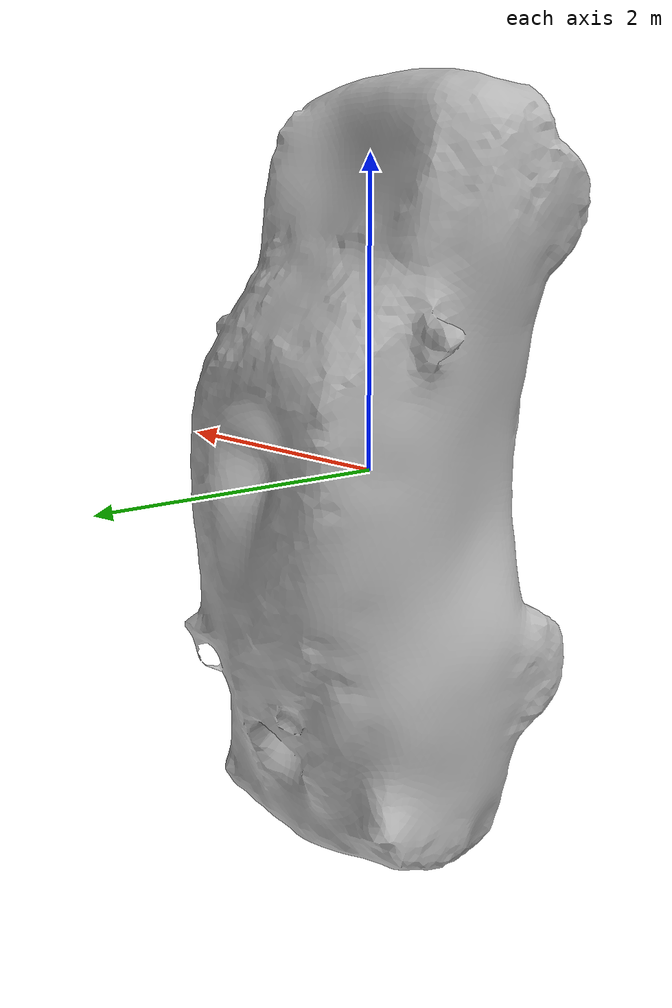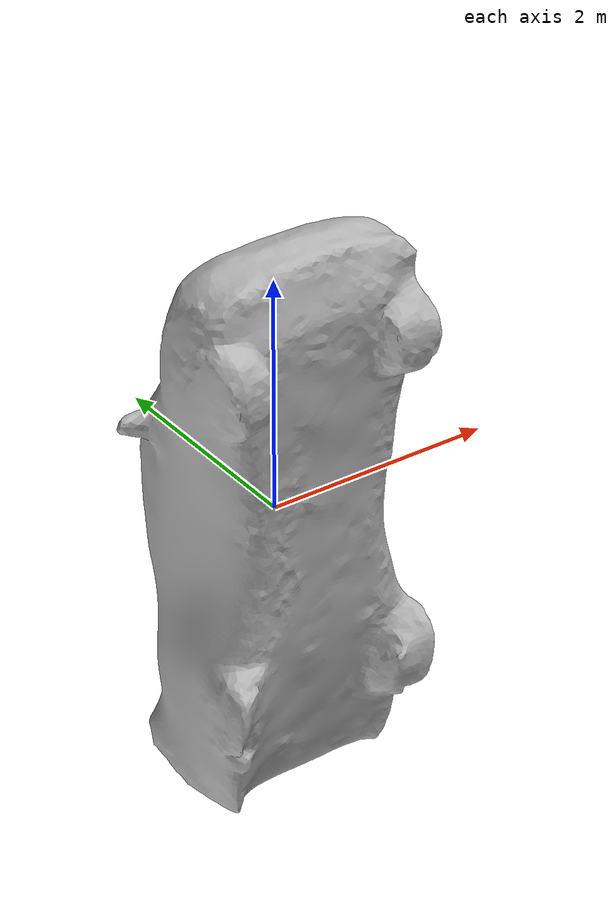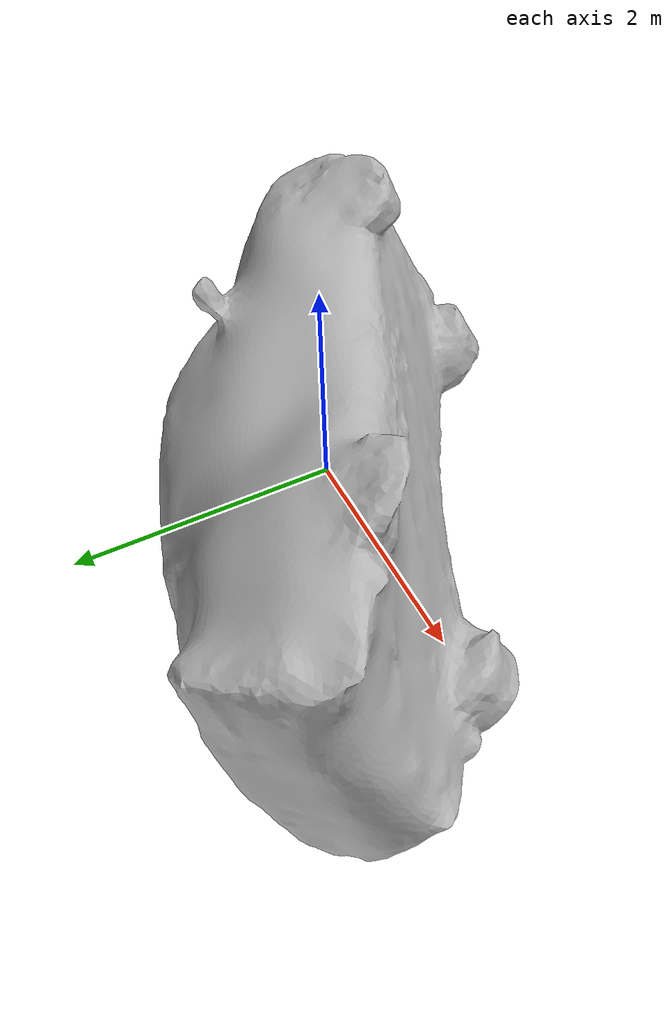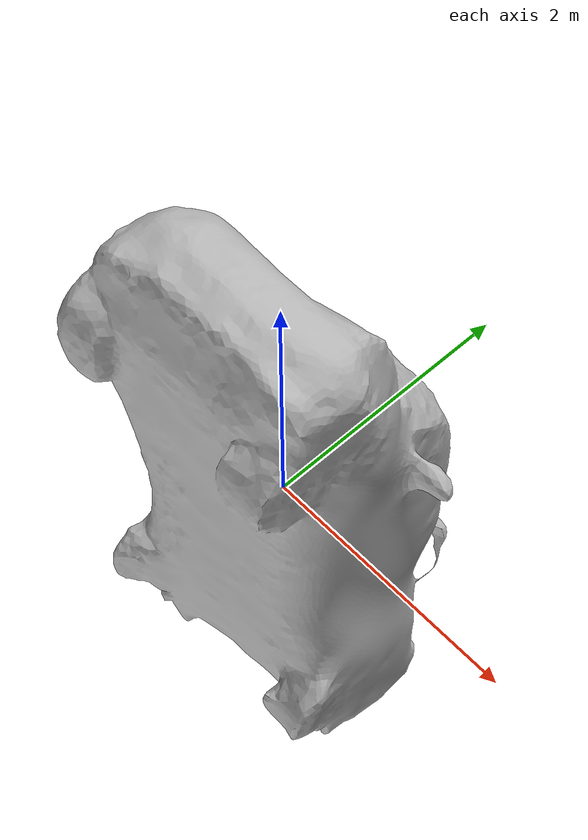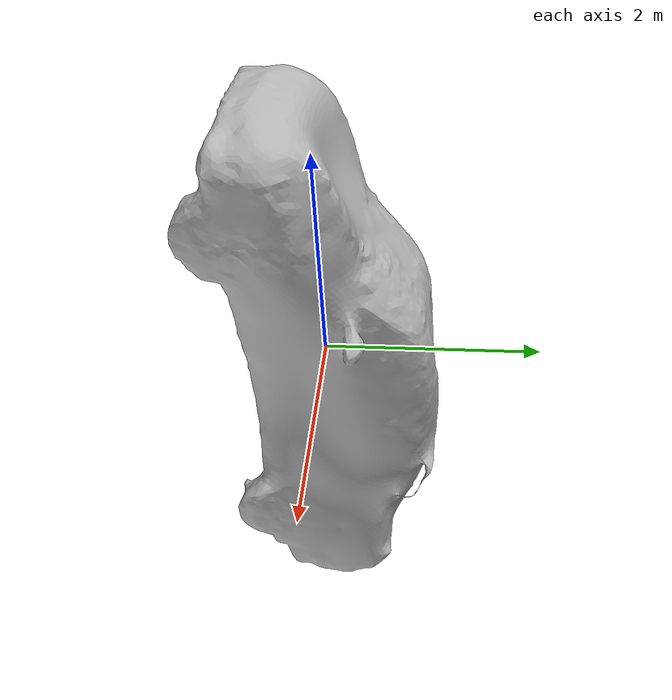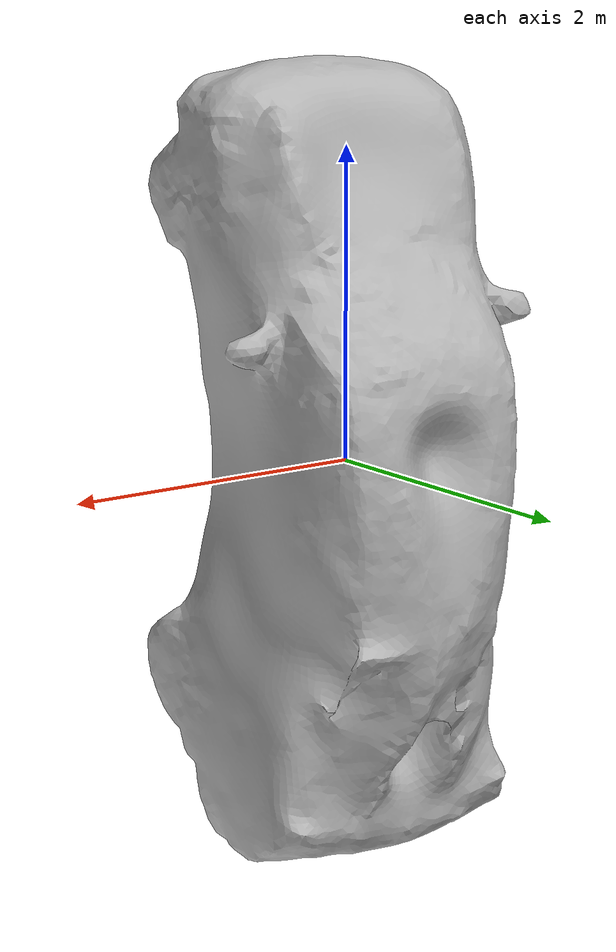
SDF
<?xml version='1.0'?>
<sdf version='1.7'>
  <model name='kare-whitecar-bot'>
    <link name='link'>
      <self_collide>0</self_collide>
      <enable_wind>0</enable_wind>
      <kinematic>0</kinematic>
      <pose>0 0 0 0 -0 0</pose>
      <gravity>1</gravity>
      <inertial>
        <mass>1</mass>
        <pose>0 0 0 0 -0 0</pose>
        <inertia>
          <ixx>1</ixx>
          <ixy>0</ixy>
          <ixz>0</ixz>
          <iyy>1</iyy>
          <iyz>0</iyz>
          <izz>1</izz>
        </inertia>
      </inertial>
      <visual name='visual'>
        <geometry>
          <mesh>
            <scale>5 5 5</scale>
            <uri>model://kare-whitecar/meshes/kare-whitecar.obj</uri>
          </mesh>
        </geometry>
        <material>
          <shader type='pixel'/>
          <emissive>0 0 0 1</emissive>
        </material>
        <pose>0 0 0 0 -0 0</pose>
        <transparency>0</transparency>
        <cast_shadows>1</cast_shadows>
      </visual>
      <collision name='collision'>
        <laser_retro>0</laser_retro>
        <max_contacts>10</max_contacts>
        <pose>0 0 0 0 -0 0</pose>
        <geometry>
          <mesh>
            <uri>/home/amadeus/model_editor_models/kare-whitecar/meshes/kare-whitecar.obj</uri>
            <scale>5 5 5</scale>
          </mesh>
        </geometry>
        <surface>
          <friction>
            <ode>
              <mu>1</mu>
              <mu2>1</mu2>
              <fdir1>0 0 0</fdir1>
              <slip1>0</slip1>
              <slip2>0</slip2>
            </ode>
            <torsional>
              <coefficient>1</coefficient>
              <patch_radius>0</patch_radius>
              <surface_radius>0</surface_radius>
              <use_patch_radius>1</use_patch_radius>
              <ode>
                <slip>0</slip>
              </ode>
            </torsional>
          </friction>
          <bounce>
            <restitution_coefficient>0</restitution_coefficient>
            <threshold>1e+06</threshold>
          </bounce>
          <contact>
            <collide_without_contact>0</collide_without_contact>
            <collide_without_contact_bitmask>1</collide_without_contact_bitmask>
            <collide_bitmask>1</collide_bitmask>
            <ode>
              <soft_cfm>0</soft_cfm>
              <soft_erp>0.2</soft_erp>
              <kp>1e+13</kp>
              <kd>1</kd>
              <max_vel>0.01</max_vel>
              <min_depth>0</min_depth>
            </ode>
            <bullet>
              <split_impulse>1</split_impulse>
              <split_impulse_penetration_threshold>-0.01</split_impulse_penetration_threshold>
              <soft_cfm>0</soft_cfm>
              <soft_erp>0.2</soft_erp>
              <kp>1e+13</kp>
              <kd>1</kd>
            </bullet>
          </contact>
        </surface>
      </collision>
    </link>
    <model name='my_bot'>
      <link name='base_link'>
        <inertial>
          <pose>0.041667 0 0.091667 0 -0 0</pose>
          <mass>0.6</mass>
          <inertia>
            <ixx>0.00559667</ixx>
            <ixy>0</ixy>
            <ixz>0.000416667</ixz>
            <iyy>0.005805</iyy>
            <iyz>0</iyz>
            <izz>0.00783333</izz>
          </inertia>
        </inertial>
        <sensor name='camera' type='camera'>
          <visualize>1</visualize>
          <update_rate>10</update_rate>
          <camera>
            <horizontal_fov>1.089</horizontal_fov>
            <image>
              <format>R8G8B8</format>
              <width>1920</width>
              <height>1080</height>
            </image>
            <clip>
              <near>0.05</near>
              <far>30</far>
            </clip>
          </camera>
          <plugin name='camera_controller' filename='libgazebo_ros_camera.so'>
            <frame_name>camera_link_optical</frame_name>
          </plugin>
          <pose>0.205 0 0.08 0 -0 0</pose>
        </sensor>
        <sensor name='laser' type='ray'>
          <visualize>0</visualize>
          <update_rate>10</update_rate>
          <ray>
            <scan>
              <horizontal>
                <samples>360</samples>
                <min_angle>-3.14</min_angle>
                <max_angle>3.14</max_angle>
                <resolution>1</resolution>
              </horizontal>
              <vertical>
                <samples>1</samples>
                <min_angle>0</min_angle>
                <max_angle>0</max_angle>
              </vertical>
            </scan>
            <range>
              <min>0.3</min>
              <max>12</max>
            </range>
          </ray>
          <plugin name='laser_controller' filename='libgazebo_ros_ray_sensor.so'>
            <ros>
              <argument>~/out:=scan</argument>
            </ros>
            <output_type>sensor_msgs/LaserScan</output_type>
            <frame_name>laser_frame</frame_name>
          </plugin>
          <pose>0 0 0.175 0 -0 0</pose>
        </sensor>
        <self_collide>0</self_collide>
        <enable_wind>0</enable_wind>
        <kinematic>0</kinematic>
        <pose>0 0 0 0 -0 0</pose>
        <visual name='base_link_fixed_joint_lump__chassis_visual'>
          <pose>0.05 0 0.075 0 -0 0</pose>
          <geometry>
            <box>
              <size>0.3 0.3 0.15</size>
            </box>
          </geometry>
          <material>
            <script>
              <name>Gazebo/White</name>
              <uri>file://media/materials/scripts/gazebo.material</uri>
            </script>
            <shader type='pixel'/>
          </material>
          <transparency>0</transparency>
          <cast_shadows>1</cast_shadows>
        </visual>
        <visual name='base_link_fixed_joint_lump__camera_link_visual_1'>
          <pose>0.205 0 0.08 0 -0 0</pose>
          <geometry>
            <box>
              <size>0.01 0.03 0.03</size>
            </box>
          </geometry>
          <material>
            <script>
              <name>Gazebo/Red</name>
              <uri>file://media/materials/scripts/gazebo.material</uri>
            </script>
            <shader type='pixel'/>
          </material>
          <transparency>0</transparency>
          <cast_shadows>1</cast_shadows>
        </visual>
        <visual name='base_link_fixed_joint_lump__laser_frame_visual_2'>
          <pose>0 0 0.175 0 -0 0</pose>
          <geometry>
            <cylinder>
              <length>0.04</length>
              <radius>0.05</radius>
            </cylinder>
          </geometry>
          <material>
            <script>
              <name>Gazebo/Red</name>
              <uri>file://media/materials/scripts/gazebo.material</uri>
            </script>
            <shader type='pixel'/>
          </material>
          <transparency>0</transparency>
          <cast_shadows>1</cast_shadows>
        </visual>
        <collision name='base_link_fixed_joint_lump__chassis_collision'>
          <laser_retro>0</laser_retro>
          <max_contacts>10</max_contacts>
          <pose>0.05 0 0.075 0 -0 0</pose>
          <geometry>
            <box>
              <size>0.3 0.3 0.15</size>
            </box>
          </geometry>
          <surface>
            <friction>
              <ode>
                <mu>1</mu>
                <mu2>1</mu2>
                <fdir1>0 0 0</fdir1>
                <slip1>0</slip1>
                <slip2>0</slip2>
              </ode>
              <torsional>
                <coefficient>1</coefficient>
                <patch_radius>0</patch_radius>
                <surface_radius>0</surface_radius>
                <use_patch_radius>1</use_patch_radius>
                <ode>
                  <slip>0</slip>
                </ode>
              </torsional>
            </friction>
            <bounce>
              <restitution_coefficient>0</restitution_coefficient>
              <threshold>1e+06</threshold>
            </bounce>
            <contact>
              <collide_without_contact>0</collide_without_contact>
              <collide_without_contact_bitmask>1</collide_without_contact_bitmask>
              <collide_bitmask>1</collide_bitmask>
              <ode>
                <soft_cfm>0</soft_cfm>
                <soft_erp>0.2</soft_erp>
                <kp>1e+13</kp>
                <kd>1</kd>
                <max_vel>0.01</max_vel>
                <min_depth>0</min_depth>
              </ode>
              <bullet>
                <split_impulse>1</split_impulse>
                <split_impulse_penetration_threshold>-0.01</split_impulse_penetration_threshold>
                <soft_cfm>0</soft_cfm>
                <soft_erp>0.2</soft_erp>
                <kp>1e+13</kp>
                <kd>1</kd>
              </bullet>
            </contact>
          </surface>
        </collision>
        <collision name='base_link_fixed_joint_lump__laser_frame_collision_1'>
          <laser_retro>0</laser_retro>
          <max_contacts>10</max_contacts>
          <pose>0 0 0.175 0 -0 0</pose>
          <geometry>
            <cylinder>
              <radius>0.05</radius>
              <length>0.04</length>
            </cylinder>
          </geometry>
          <surface>
            <friction>
              <ode>
                <mu>1</mu>
                <mu2>1</mu2>
                <fdir1>0 0 0</fdir1>
                <slip1>0</slip1>
                <slip2>0</slip2>
              </ode>
              <torsional>
                <coefficient>1</coefficient>
                <patch_radius>0</patch_radius>
                <surface_radius>0</surface_radius>
                <use_patch_radius>1</use_patch_radius>
                <ode>
                  <slip>0</slip>
                </ode>
              </torsional>
            </friction>
            <bounce>
              <restitution_coefficient>0</restitution_coefficient>
              <threshold>1e+06</threshold>
            </bounce>
            <contact>
              <collide_without_contact>0</collide_without_contact>
              <collide_without_contact_bitmask>1</collide_without_contact_bitmask>
              <collide_bitmask>1</collide_bitmask>
              <ode>
                <soft_cfm>0</soft_cfm>
                <soft_erp>0.2</soft_erp>
                <kp>1e+13</kp>
                <kd>1</kd>
                <max_vel>0.01</max_vel>
                <min_depth>0</min_depth>
              </ode>
              <bullet>
                <split_impulse>1</split_impulse>
                <split_impulse_penetration_threshold>-0.01</split_impulse_penetration_threshold>
                <soft_cfm>0</soft_cfm>
                <soft_erp>0.2</soft_erp>
                <kp>1e+13</kp>
                <kd>1</kd>
              </bullet>
            </contact>
          </surface>
        </collision>
      </link>
      <static>0</static>
      <allow_auto_disable>1</allow_auto_disable>
      <plugin name='diff_drive' filename='libgazebo_ros_diff_drive.so'>
        <left_joint>left_wheel_joint</left_joint>
        <right_joint>right_wheel_joint</right_joint>
        <wheel_separation>0.35</wheel_separation>
        <wheel_diameter>0.1</wheel_diameter>
        <max_wheel_torque>200</max_wheel_torque>
        <max_wheel_acceleration>50.0</max_wheel_acceleration>
        <odometry_frame>odom</odometry_frame>
        <robot_base_frame>base_link</robot_base_frame>
        <publish_odom>1</publish_odom>
        <publish_odom_tf>1</publish_odom_tf>
        <publish_wheel_tf>1</publish_wheel_tf>
      </plugin>
      <pose>-0.159731 0.270042 0.762869 0 0 0</pose>
    </model>
    <joint name='link_JOINT_0' type='fixed'>
      <parent>link</parent>
      <child>my_bot::base_link</child>
      <pose>0 0 0 0 -0 0</pose>
      <physics>
        <ode>
          <limit>
            <cfm>0</cfm>
            <erp>0.2</erp>
          </limit>
          <suspension>
            <cfm>0</cfm>
            <erp>0.2</erp>
          </suspension>
        </ode>
      </physics>
    </joint>
    <static>1</static>
    <allow_auto_disable>1</allow_auto_disable>
  </model>
</sdf>
